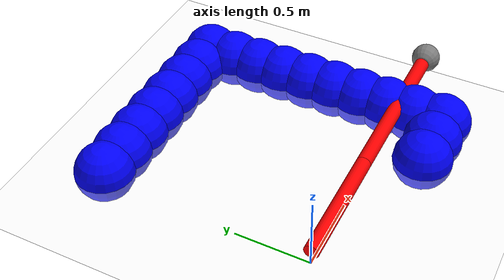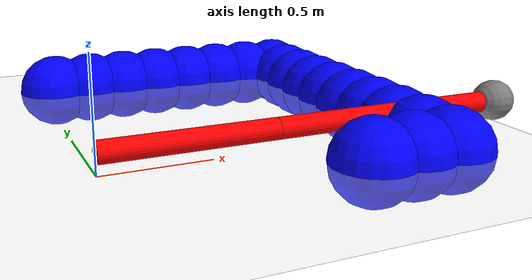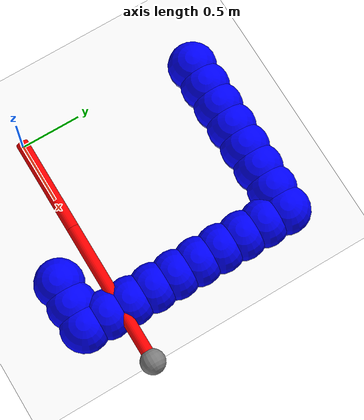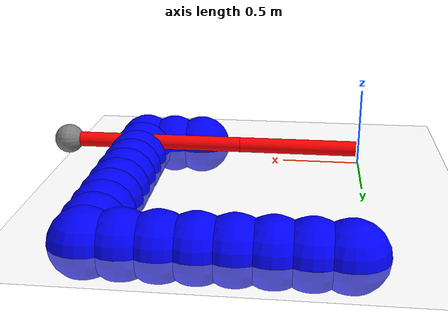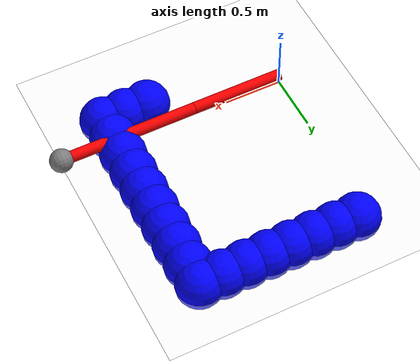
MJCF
<mujoco>
	<asset>
		<material name="red"   rgba="1 0 0 1"/>
		<material name="green" rgba="0 1 0 1"/>
		<material name="blue"  rgba="0 0 1 1"/>
		<material name="white" rgba="1 1 1 1"/>
		<material name="gray"  rgba=".5 .5 .5 1"/>
	</asset>

    <option collision="predefined"/>

    <worldbody>
        <light diffuse=".5 .5 .5" pos="0 0 10" dir="0 0 -1"/>
        <geom type="plane" size="2 2 0.1" rgba="1 1 1 1"/>

        <body name="link 0" pos="0.4 0 0.1" euler="0 90 0">
            <joint name="joint 0" type="hinge" axis="-1 0 0" pos="0 0 -0.4"/>
            <geom name="geom link 0" type="cylinder" size="0.05 0.4" material="red"/>
            <body name="link 1" pos="0 0 1.0" euler="0 0 0">
                <joint name="joint 1" type="hinge" axis="-1 0 0" pos="0 0 -0.6"/>
                <geom name="geom link 1" type="cylinder" size="0.05 0.6" material="red"/>
                <site name="tip" size="0.1" pos="0 0 0.6"/>
            </body>
        </body>

        <body name="link 0 shade" pos="0.4 0 0.1" euler="0 90 0">
            <joint name="joint 0 shade" type="hinge" axis="-1 0 0" pos="0 0 -0.4"/>
            <geom name="geom link 0 shade" type="cylinder" size="0.05 0.4" material="green"/>
            <body name="link 1 shade" pos="0 0 1.0" euler="0 0 0">
                <joint name="joint 1 shade" type="hinge" axis="-1 0 0" pos="0 0 -0.6"/>
                <geom name="geom link 1 shade" type="cylinder" size="0.05 0.6" material="green"/>
            </body>
        </body>

        <body name="obstacle 0">
            <geom name="geom obstacle 0" type="sphere" size="0.2" pos="1.1 -0.3 0.0" material="blue"/>
        </body>
        <body name="obstacle 1">
            <geom name="geom obstacle 1" type="sphere" size="0.2" pos="1.3 -0.3 0.0" material="blue"/>
        </body>
        <body name="obstacle 2">
            <geom name="geom obstacle 2" type="sphere" size="0.2" pos="1.5 -0.3 0.0" material="blue"/>
        </body>
        <body name="obstacle 3">
            <geom name="geom obstacle 3" type="sphere" size="0.2" pos="1.5 -0.3 0.0" material="blue"/>
        </body>
        <body name="obstacle 4">
            <geom name="geom obstacle 4" type="sphere" size="0.2" pos="1.5 -0.1 0.0" material="blue"/>
        </body>
        <body name="obstacle 5">
            <geom name="geom obstacle 5" type="sphere" size="0.2" pos="1.5  0.1 0.0" material="blue"/>
        </body>
        <body name="obstacle 6">
            <geom name="geom obstacle 6" type="sphere" size="0.2" pos="1.5  0.3 0.0" material="blue"/>
        </body>
        <body name="obstacle 7">
            <geom name="geom obstacle 7" type="sphere" size="0.2" pos="1.5  0.5 0.0" material="blue"/>
        </body>
        <body name="obstacle 8">
            <geom name="geom obstacle 8" type="sphere" size="0.2" pos="1.5  0.7 0.0" material="blue"/>
        </body>
        <body name="obstacle 9">
            <geom name="geom obstacle 9" type="sphere" size="0.2" pos="1.5  0.9 0.0" material="blue"/>
        </body>
        <body name="obstacle 10">
            <geom name="geom obstacle 10" type="sphere" size="0.2" pos="1.5  1.1 0.0" material="blue"/>
        </body>
        <body name="obstacle 11">
            <geom name="geom obstacle 11" type="sphere" size="0.2" pos="1.5  1.3 0.0" material="blue"/>
        </body>
        <body name="obstacle 12">
            <geom name="geom obstacle 12" type="sphere" size="0.2" pos="1.5  1.5 0.0" material="blue"/>
        </body>
        <body name="obstacle 13">
            <geom name="geom obstacle 13" type="sphere" size="0.2" pos="1.3  1.5 0.0" material="blue"/>
        </body>
        <body name="obstacle 14">
            <geom name="geom obstacle 14" type="sphere" size="0.2" pos="1.1  1.5 0.0" material="blue"/>
        </body>
        <body name="obstacle 15">
            <geom name="geom obstacle 15" type="sphere" size="0.2" pos="0.9  1.5 0.0" material="blue"/>
        </body>
        <body name="obstacle 16">
            <geom name="geom obstacle 16" type="sphere" size="0.2" pos="0.7  1.5 0.0" material="blue"/>
        </body>
        <body name="obstacle 17">
            <geom name="geom obstacle 17" type="sphere" size="0.2" pos="0.5  1.5 0.0" material="blue"/>
        </body>
        <body name="obstacle 18">
            <geom name="geom obstacle 18" type="sphere" size="0.2" pos="0.3  1.5 0.0" material="blue"/>
        </body>
        <body name="obstacle 19">
            <geom name="geom obstacle 19" type="sphere" size="0.2" pos="0.1  1.5 0.0" material="blue"/>
        </body>

    </worldbody>

    <contact>
        <pair geom1="geom link 0" geom2="geom obstacle 0"/>
        <pair geom1="geom link 0" geom2="geom obstacle 1"/>
        <pair geom1="geom link 0" geom2="geom obstacle 2"/>
        <pair geom1="geom link 0" geom2="geom obstacle 3"/>
        <pair geom1="geom link 0" geom2="geom obstacle 4"/>
        <pair geom1="geom link 0" geom2="geom obstacle 5"/>
        <pair geom1="geom link 0" geom2="geom obstacle 6"/>
        <pair geom1="geom link 0" geom2="geom obstacle 7"/>
        <pair geom1="geom link 0" geom2="geom obstacle 8"/>
        <pair geom1="geom link 0" geom2="geom obstacle 9"/>
        <pair geom1="geom link 0" geom2="geom obstacle 10"/>
        <pair geom1="geom link 0" geom2="geom obstacle 11"/>
        <pair geom1="geom link 0" geom2="geom obstacle 12"/>
        <pair geom1="geom link 0" geom2="geom obstacle 13"/>
        <pair geom1="geom link 0" geom2="geom obstacle 14"/>
        <pair geom1="geom link 0" geom2="geom obstacle 15"/>
        <pair geom1="geom link 0" geom2="geom obstacle 16"/>
        <pair geom1="geom link 0" geom2="geom obstacle 17"/>
        <pair geom1="geom link 0" geom2="geom obstacle 18"/>
        <pair geom1="geom link 0" geom2="geom obstacle 19"/>
        <pair geom1="geom link 1" geom2="geom obstacle 0"/>
        <pair geom1="geom link 1" geom2="geom obstacle 1"/>
        <pair geom1="geom link 1" geom2="geom obstacle 2"/>
        <pair geom1="geom link 1" geom2="geom obstacle 3"/>
        <pair geom1="geom link 1" geom2="geom obstacle 4"/>
        <pair geom1="geom link 1" geom2="geom obstacle 5"/>
        <pair geom1="geom link 1" geom2="geom obstacle 6"/>
        <pair geom1="geom link 1" geom2="geom obstacle 7"/>
        <pair geom1="geom link 1" geom2="geom obstacle 8"/>
        <pair geom1="geom link 1" geom2="geom obstacle 9"/>
        <pair geom1="geom link 1" geom2="geom obstacle 10"/>
        <pair geom1="geom link 1" geom2="geom obstacle 11"/>
        <pair geom1="geom link 1" geom2="geom obstacle 12"/>
        <pair geom1="geom link 1" geom2="geom obstacle 13"/>
        <pair geom1="geom link 1" geom2="geom obstacle 14"/>
        <pair geom1="geom link 1" geom2="geom obstacle 15"/>
        <pair geom1="geom link 1" geom2="geom obstacle 16"/>
        <pair geom1="geom link 1" geom2="geom obstacle 17"/>
        <pair geom1="geom link 1" geom2="geom obstacle 18"/>
        <pair geom1="geom link 1" geom2="geom obstacle 19"/>
    </contact>

    <sensor>
      <framepos objtype="site" objname="tip"/>
    </sensor>
</mujoco>
